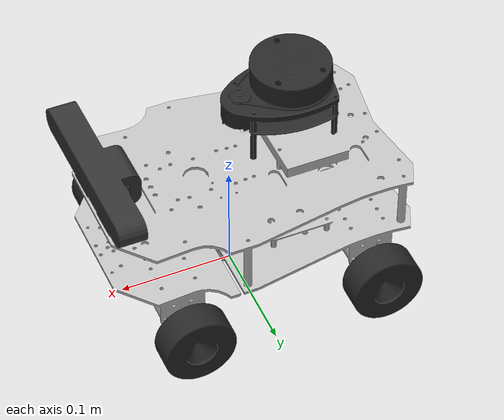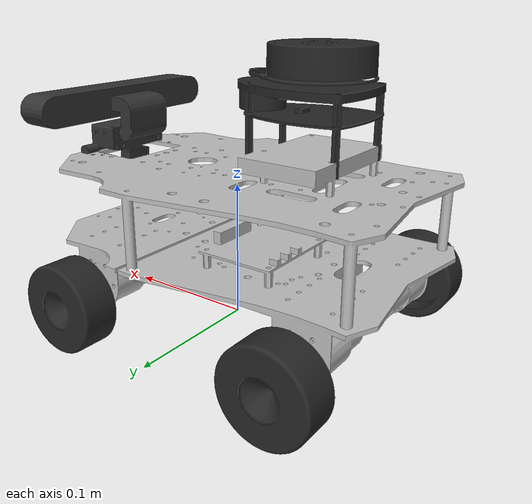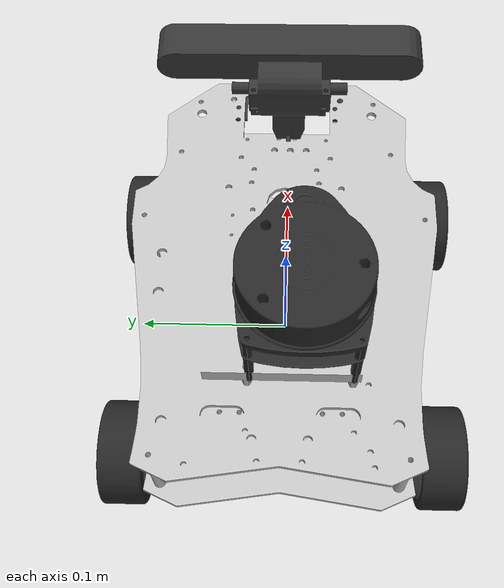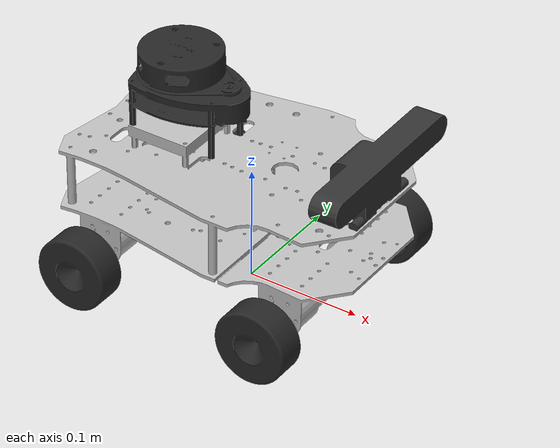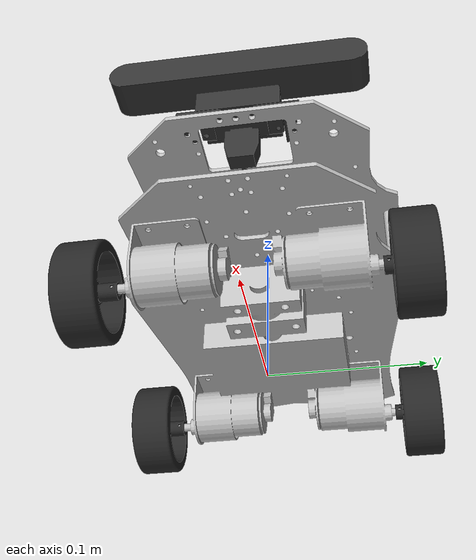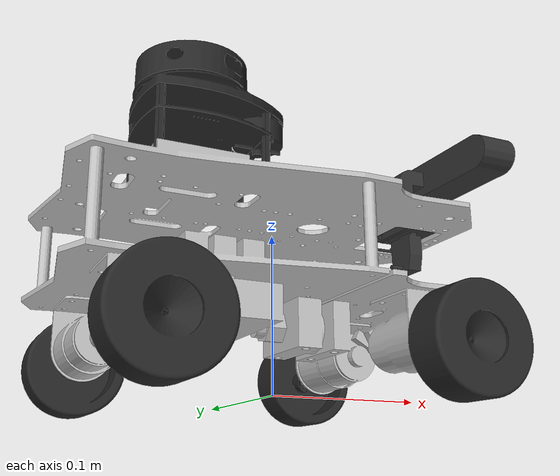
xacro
<?xml version="1.0"?>
<robot name="wheeltec_r550" xmlns:xacro="http://ros.org/wiki/xacro">

  <material name="yellow"><color rgba="0.8 0.8 0.0 1.0" /></material>
  <material name="black"><color rgba="0.15 0.15 0.15 1.0" /></material>
  <material name="dark_grey"><color rgba="0.2 0.2 0.2 1.0" /></material>
  <material name="light_grey"><color rgba="0.75 0.75 0.75 1.0" /></material>

  <link name="base_footprint"></link>

  <joint name="base_link_joint" type="fixed">
    <origin xyz="0 0 0.05" rpy="0 0 0" />
    <parent link="base_footprint"/>
    <child link="base_link" />
  </joint>

  <!-- Base Link -->
  <link name="base_link">
    <visual>
        <origin xyz="0 0 0" rpy="0 0 0"/>
        <geometry>
            <mesh filename="package://r550_gazebo/meshes/mini_4wd/base_link.STL"/>
        </geometry>
        <material name="light_grey" />
    </visual>
    <collision>
        <origin xyz="0 0 0" rpy="0 0 0"/>
        <geometry>
            <mesh filename="package://r550_gazebo/meshes/mini_4wd/base_link.STL"/>
        </geometry>
    </collision>
    <inertial>
        <mass value="2.5"/>
        <inertia ixx="0.01" ixy="0" ixz="0" iyy="0.01" iyz="0" izz="0.01"/>
    </inertial>
  </link>

  <joint name="right_front_wheel_joint" type="continuous">
        <parent link="base_link"/>
        <child link="right_front_wheel_link"/>
        <origin xyz="0.0715 -0.09 -0.027" rpy="0 0 0"/>
        <axis xyz="0 1 0"/>
  </joint>

  <!-- Right Front Wheel Link -->
  <link name="right_front_wheel_link">
    <visual>
        <origin xyz="0 0 0" rpy="0 0 0"/>
        <geometry>
            <mesh filename="package://r550_gazebo/meshes/mini_4wd/right_front_wheel_link.STL"/>
        </geometry>
        <material name="black" />
    </visual>
    <collision>
        <origin xyz="0 0 0" rpy="0 0 0"/>
        <geometry>
            <mesh filename="package://r550_gazebo/meshes/mini_4wd/right_front_wheel_link.STL"/>
        </geometry>
    </collision>
    <inertial>
        <mass value="0.1"/>
        <inertia ixx="0.0005" ixy="0" ixz="0" iyy="0.0005" iyz="0" izz="0.0005"/>
    </inertial>
  </link>

  <joint name="left_front_wheel_joint" type="continuous">
        <parent link="base_link"/>
        <child link="left_front_wheel_link"/>
        <origin xyz="0.072 0.09 -0.027" rpy="0 0 0"/>
        <axis xyz="0 1 0"/>
  </joint>

  <!-- Left Front Wheel Link -->
  <link name="left_front_wheel_link">
    <visual>
      <origin xyz="0 0 0" rpy="0 0 3.14159"/>
        <geometry>
            <mesh filename="package://r550_gazebo/meshes/mini_4wd/right_front_wheel_link.STL"/>
        </geometry>
      <material name="black" />
    </visual>
    <collision>
      <origin xyz="0 0 0" rpy="0 0 3.14159"/>
      <geometry>
            <mesh filename="package://r550_gazebo/meshes/mini_4wd/right_front_wheel_link.STL"/>
      </geometry>
    </collision>
    <inertial>
            <mass value="0.1"/>
            <inertia ixx="0.0005" ixy="0" ixz="0" iyy="0.0005" iyz="0" izz="0.0005"/>
    </inertial>
  </link>

 <joint name="right_rear_wheel_joint" type="continuous">
        <parent link="base_link"/>
        <child link="right_rear_wheel_link"/>
        <origin xyz="-0.1 -0.09 -0.027" rpy="0 0 0"/>
        <axis xyz="0 1 0"/>
  </joint>

  <!-- Right Rear Wheel Link -->
  <link name="right_rear_wheel_link">
    <visual>
        <origin xyz="0 0 0" rpy="0 0 0"/>
        <geometry>
            <mesh filename="package://r550_gazebo/meshes/mini_4wd/right_front_wheel_link.STL"/>
        </geometry>
        <material name="black" />
    </visual>
    <collision>
        <origin xyz="0 0 0" rpy="0 0 0"/>
        <geometry>
            <mesh filename="package://r550_gazebo/meshes/mini_4wd/right_front_wheel_link.STL"/>
        </geometry>
    </collision>
    <inertial>
        <mass value="0.1"/>
        <inertia ixx="0.0005" ixy="0" ixz="0" iyy="0.0005" iyz="0" izz="0.0005"/>
    </inertial>
  </link>

  <joint name="left_rear_wheel_joint" type="continuous">
        <parent link="base_link"/>
        <child link="left_rear_wheel_link"/>
        <origin xyz="-0.1 0.09 -0.027" rpy="0 0 0"/>
        <axis xyz="0 1 0"/>
  </joint>

  <!-- Left Rear Wheel Link -->
  <link name="left_rear_wheel_link">
    <visual>
      <origin xyz="0 0 0" rpy="0 0 3.14159"/>
      <geometry>
            <mesh filename="package://r550_gazebo/meshes/mini_4wd/right_front_wheel_link.STL"/>
        </geometry>
      <material name="black" />
    </visual>
    <collision>
        <origin xyz="0 0 0" rpy="0 0 3.14159"/>
        <geometry>
            <mesh filename="package://r550_gazebo/meshes/mini_4wd/right_front_wheel_link.STL"/>
        </geometry>
    </collision>
    <inertial>
        <mass value="0.1"/>
        <inertia ixx="0.0005" ixy="0" ixz="0" iyy="0.0005" iyz="0" izz="0.0005"/>
    </inertial>
  </link>

  <joint name="c70_joint" type="fixed">
        <parent link="base_link"/>
        <child link="c70_link"/>
        <origin xyz="0.13 0 0.1" rpy="0 0 0"/>
  </joint>

  <!-- C70 Camera Link -->
  <link name="c70_link">
    <inertial>
        <mass value="0.05"/>
        <inertia ixx="1e-5" ixy="0" ixz="0" iyy="1e-5" iyz="0" izz="1e-5"/>
    </inertial>
    <visual>
        <origin xyz="0 0 0" rpy="0 0 0"/>
        <geometry>
            <mesh filename="package://r550_gazebo/meshes/mini_4wd/camera_link.STL"/>
        </geometry>
        <material name="dark_grey" />
    </visual>
    <collision>
        <origin xyz="0 0 0" rpy="0 0 0"/>
        <geometry>
            <mesh filename="package://r550_gazebo/meshes/mini_4wd/camera_link.STL"/>
        </geometry>
    </collision>
  </link>

  <joint name="rplidar_joint" type="fixed">
        <parent link="base_link"/>
        <child link="rplidar_link"/>
        <origin xyz="-0.06 -0.01 0.15" rpy="0 0 4.712385"/>
  </joint>

  <!-- RPLIDAR Link -->
  <link name="rplidar_link">
        <inertial>
            <mass value="0.001"/>
            <inertia ixx="1e-6" ixy="0" ixz="0" iyy="1e-6" iyz="0" izz="1e-6"/>
        </inertial>
        <visual>
            <origin xyz="0 0 0" rpy="0 0 4.712385"/>
            <geometry>
                <mesh filename="package://r550_gazebo/meshes/mini_4wd/rplidar_link.STL"/>
            </geometry>
            <material name="black" />
        </visual>
    <collision>
        <origin xyz="0 0 0" rpy="0 0 4.712385"/>
        <geometry>
            <mesh filename="package://r550_gazebo/meshes/mini_4wd/rplidar_link.STL"/>
        </geometry>
    </collision>
  </link>

  <xacro:include filename="$(find r550_gazebo)/models/wheeltec/r550.gazebo" />
</robot>
